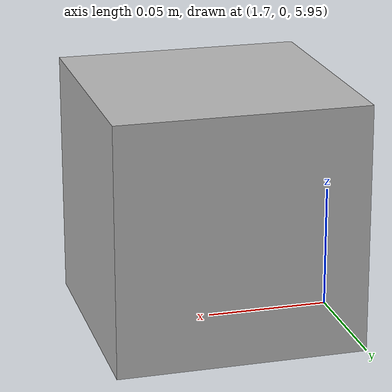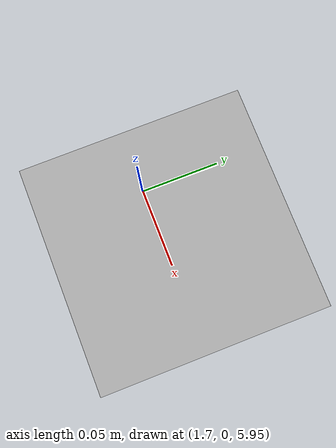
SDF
<sdf version="1.6">
 <world name="default">
  <plugin name="ros_link_attacher_plugin" filename="libgazebo_ros_link_attacher.so"/>
  <light name="sun" type="directional">
   <pose>0 0 10 0 -0 0</pose>
   <diffuse>0.8 0.8 0.8 1</diffuse>
   <specular>0.2 0.2 0.2 1</specular>
   <attenuation>
    <range>1000</range>
    <constant>0.9</constant>
    <linear>0.01</linear>
    <quadratic>0.001</quadratic>
   </attenuation>
   <direction>-0.5 0.1 -0.9</direction>
  </light>
  <model name="ground_plane">
   <static>1</static>
   <link name="link">
    <collision name="collision">
     <geometry><plane><normal>0 0 1</normal><size>100 100</size></plane></geometry>
     <surface><friction><ode><mu>100</mu><mu2>50</mu2></ode></friction></surface>
    </collision>
    <visual name="visual">
     <cast_shadows>0</cast_shadows>
     <geometry><plane><normal>0 0 1</normal><size>100 100</size></plane></geometry>
     <material>
      <script><uri>file://media/materials/scripts/gazebo.material</uri><name>Gazebo/Grey</name></script>
     </material>
    </visual>
   </link>
  </model>
  <gravity>0 0 -9.8</gravity>
  <magnetic_field>6e-06 2.3e-05 -4.2e-05</magnetic_field>
  <atmosphere type="adiabatic"/>
  <physics name="default_physics" default="0" type="ode">
   <max_step_size>0.001</max_step_size>
   <real_time_factor>1</real_time_factor>
   <real_time_update_rate>1000</real_time_update_rate>
  </physics>
  <scene><ambient>0.4 0.4 0.4 1</ambient><background>0.7 0.7 0.7 1</background><shadows>1</shadows></scene>
  <spherical_coordinates>
   <surface_model>EARTH_WGS84</surface_model>
   <latitude_deg>0</latitude_deg>
   <longitude_deg>0</longitude_deg>
   <elevation>0</elevation>
   <heading_deg>0</heading_deg>
  </spherical_coordinates>
  <model name="camera_3">
   <pose>1.75 0 6 0 1.57 0</pose>
   <link name="link">
    <gravity>0</gravity>
    <collision name="collision"><geometry><box><size>0.1 0.1 0.1</size></box></geometry></collision>
    <visual name="visual"><geometry><box><size>0.1 0.1 0.1</size></box></geometry></visual>
    <sensor name="camera" type="camera">
     <camera name="__default__">
      <horizontal_fov>1.047</horizontal_fov>
      <image><width>1920</width><height>1080</height></image>
      <clip><near>0.1</near><far>100</far></clip>
     </camera>
     <plugin name="camera_controller" filename="libgazebo_ros_camera.so">
      <alwaysOn>1</alwaysOn>
      <updateRate>0.0</updateRate>
      <cameraName>camera_3</cameraName>
      <imageTopicName>image_raw</imageTopicName>
      <cameraInfoTopicName>camera_info</cameraInfoTopicName>
      <frameName>camera_3</frameName>
      <hackBaseline>0.07</hackBaseline>
      <distortionK1>0.0</distortionK1>
      <distortionK2>0.0</distortionK2>
      <distortionK3>0.0</distortionK3>
      <distortionT1>0.0</distortionT1>
      <distortionT2>0.0</distortionT2>
     </plugin>
     <always_on>1</always_on>
     <update_rate>30</update_rate>
     <visualize>1</visualize>
    </sensor>
    <inertial>
     <inertia><ixx>1</ixx><ixy>0</ixy><ixz>0</ixz><iyy>1</iyy><iyz>0</iyz><izz>1</izz></inertia>
     <mass>1</mass>
    </inertial>
   </link>
  </model>
 </world>
</sdf>
